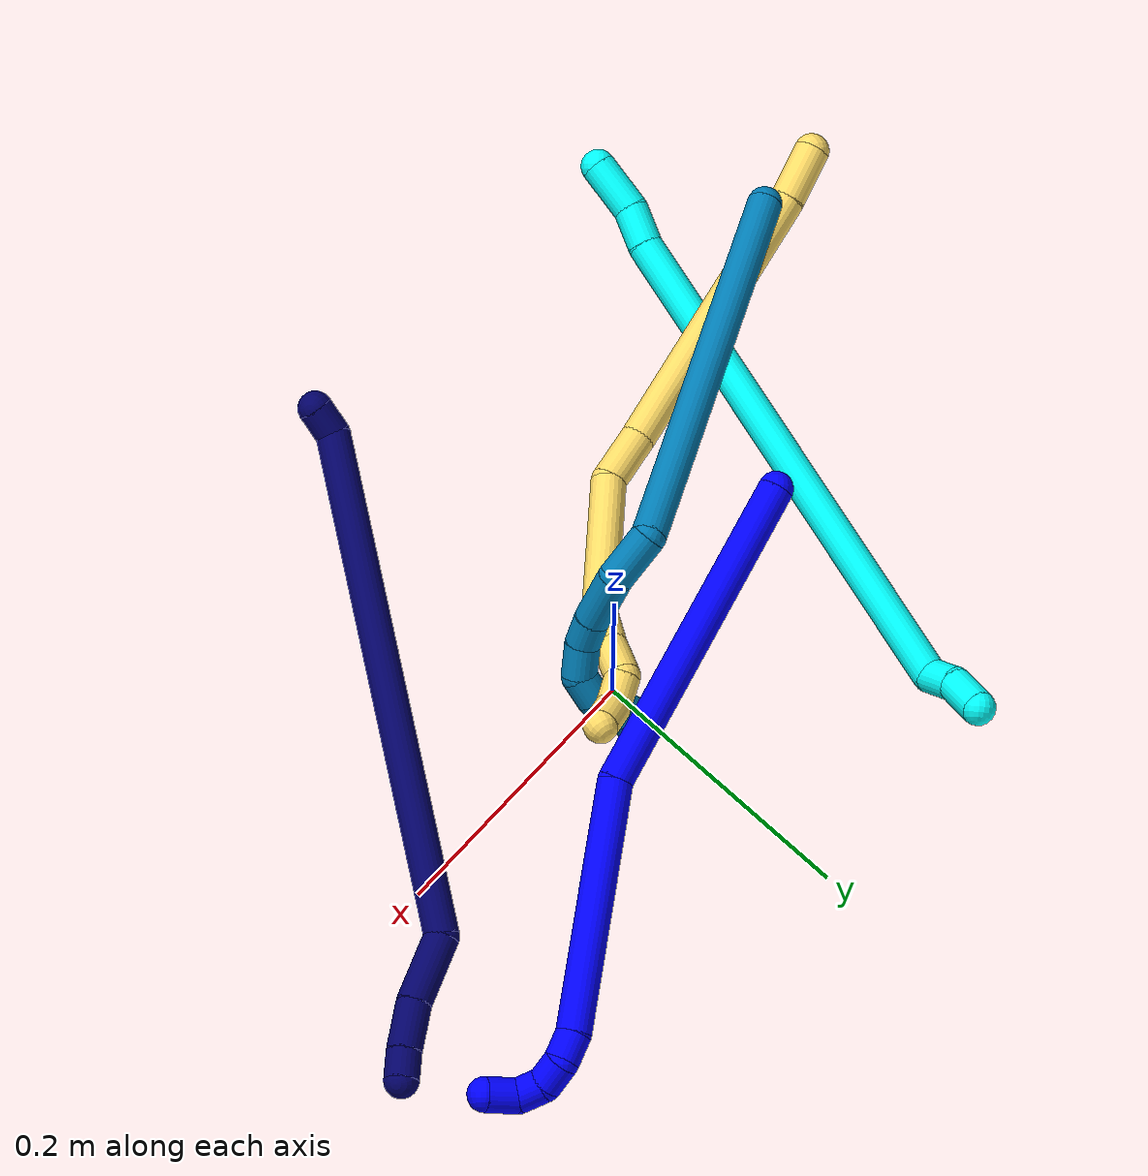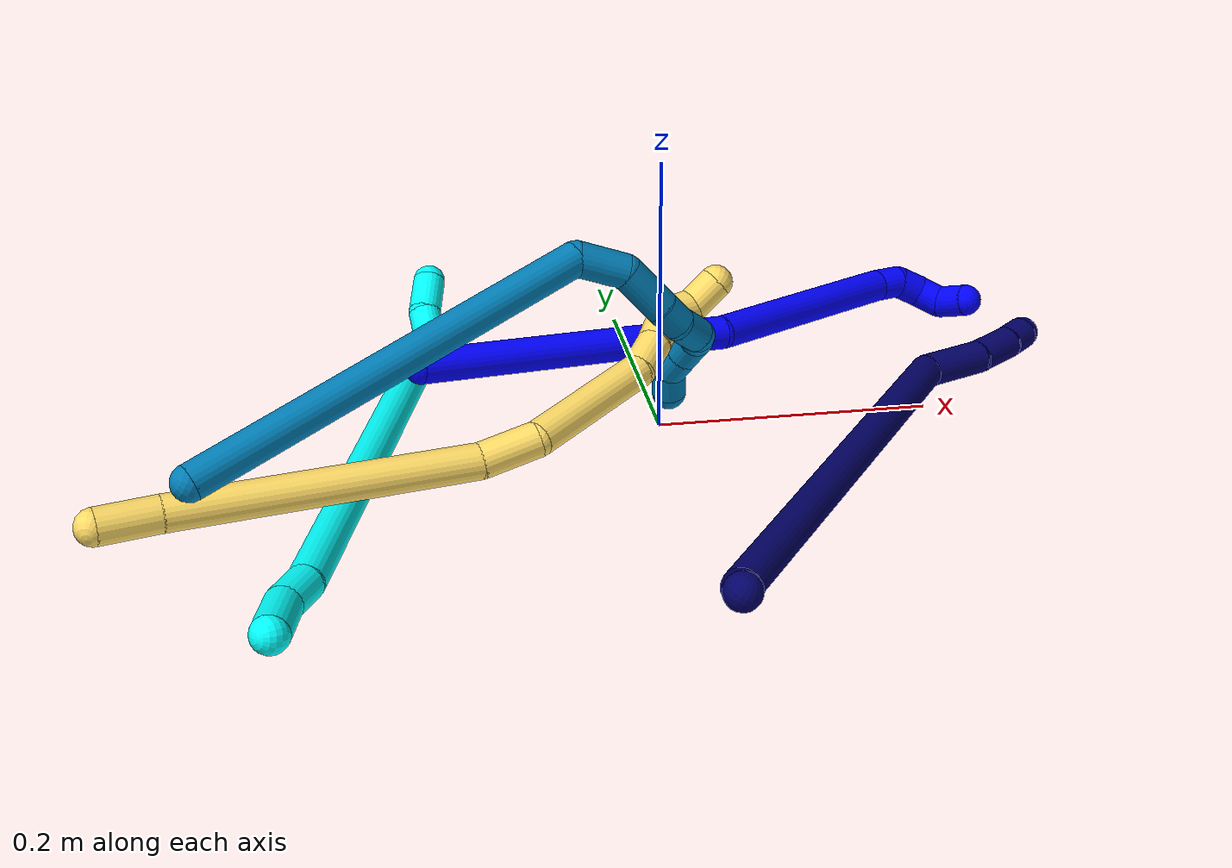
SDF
<sdf version="1.7">
 <world name="default">
  <model name="1">
   <static>0</static>
   <link name="1">
    <collision name="collision-cylinder-e_1_1_4">
     <pose>0.026038 0.046804 0.105068 -0.419074 0.222623 -0.04753</pose>
     <geometry><cylinder><radius>0.0125</radius><length>0.235863</length></cylinder></geometry>
     <surface>
      <friction><ode><mu>1.16</mu><mu2>1.16</mu2><slip1>0</slip1><slip2>0</slip2></ode></friction>
      <contact><ode><kp>1e+06</kp><kd>1</kd><max_vel>0</max_vel><min_depth>0.001</min_depth></ode></contact>
     </surface>
    </collision>
    <visual name="visual-cylinder-e_1_1_4">
     <pose>0.026038 0.046804 0.105068 -0.419074 0.222623 -0.04753</pose>
     <geometry><cylinder><radius>0.0125</radius><length>0.235863</length></cylinder></geometry>
     <material><ambient>0 0 1 1</ambient></material>
    </visual>
    <collision name="collision-cylinder-e_2_4_5">
     <pose>0.058382 0.104125 0.298619 -0.118306 0.070656 -0.004186</pose>
     <geometry><cylinder><radius>0.0125</radius><length>0.178659</length></cylinder></geometry>
     <surface>
      <friction><ode><mu>1.16</mu><mu2>1.16</mu2><slip1>0</slip1><slip2>0</slip2></ode></friction>
      <contact><ode><kp>1e+06</kp><kd>1</kd><max_vel>0</max_vel><min_depth>0.001</min_depth></ode></contact>
     </surface>
    </collision>
    <visual name="visual-cylinder-e_2_4_5">
     <pose>0.058382 0.104125 0.298619 -0.118306 0.070656 -0.004186</pose>
     <geometry><cylinder><radius>0.0125</radius><length>0.178659</length></cylinder></geometry>
     <material><ambient>0 0 1 1</ambient></material>
    </visual>
    <collision name="collision-cylinder-e_3_5_6">
     <pose>0.066924 0.117865 0.39684 -0.319651 0.214549 -0.034715</pose>
     <geometry><cylinder><radius>0.0125</radius><length>0.020994</length></cylinder></geometry>
     <surface>
      <friction><ode><mu>1.16</mu><mu2>1.16</mu2><slip1>0</slip1><slip2>0</slip2></ode></friction>
      <contact><ode><kp>1e+06</kp><kd>1</kd><max_vel>0</max_vel><min_depth>0.001</min_depth></ode></contact>
     </surface>
    </collision>
    <visual name="visual-cylinder-e_3_5_6">
     <pose>0.066924 0.117865 0.39684 -0.319651 0.214549 -0.034715</pose>
     <geometry><cylinder><radius>0.0125</radius><length>0.020994</length></cylinder></geometry>
     <material><ambient>0 0 1 1</ambient></material>
    </visual>
    <collision name="collision-cylinder-e_4_6_7">
     <pose>0.068237 0.128144 0.41388 -0.768238 -0.090511 0.036605</pose>
     <geometry><cylinder><radius>0.0125</radius><length>0.020394</length></cylinder></geometry>
     <surface>
      <friction><ode><mu>1.16</mu><mu2>1.16</mu2><slip1>0</slip1><slip2>0</slip2></ode></friction>
      <contact><ode><kp>1e+06</kp><kd>1</kd><max_vel>0</max_vel><min_depth>0.001</min_depth></ode></contact>
     </surface>
    </collision>
    <visual name="visual-cylinder-e_4_6_7">
     <pose>0.068237 0.128144 0.41388 -0.768238 -0.090511 0.036605</pose>
     <geometry><cylinder><radius>0.0125</radius><length>0.020394</length></cylinder></geometry>
     <material><ambient>0 0 1 1</ambient></material>
    </visual>
    <collision name="collision-cylinder-e_5_7_8">
     <pose>0.068521 0.144536 0.424764 -1.20453 0.11999 -0.082541</pose>
     <geometry><cylinder><radius>0.0125</radius><length>0.020141</length></cylinder></geometry>
     <surface>
      <friction><ode><mu>1.16</mu><mu2>1.16</mu2><slip1>0</slip1><slip2>0</slip2></ode></friction>
      <contact><ode><kp>1e+06</kp><kd>1</kd><max_vel>0</max_vel><min_depth>0.001</min_depth></ode></contact>
     </surface>
    </collision>
    <visual name="visual-cylinder-e_5_7_8">
     <pose>0.068521 0.144536 0.424764 -1.20453 0.11999 -0.082541</pose>
     <geometry><cylinder><radius>0.0125</radius><length>0.020141</length></cylinder></geometry>
     <material><ambient>0 0 1 1</ambient></material>
    </visual>
    <collision name="collision-cylinder-e_6_8_2">
     <pose>0.078451 0.162066 0.428667 -1.53145 0.816286 -0.788</pose>
     <geometry><cylinder><radius>0.0125</radius><length>0.023949</length></cylinder></geometry>
     <surface>
      <friction><ode><mu>1.16</mu><mu2>1.16</mu2><slip1>0</slip1><slip2>0</slip2></ode></friction>
      <contact><ode><kp>1e+06</kp><kd>1</kd><max_vel>0</max_vel><min_depth>0.001</min_depth></ode></contact>
     </surface>
    </collision>
    <visual name="visual-cylinder-e_6_8_2">
     <pose>0.078451 0.162066 0.428667 -1.53145 0.816286 -0.788</pose>
     <geometry><cylinder><radius>0.0125</radius><length>0.023949</length></cylinder></geometry>
     <material><ambient>0 0 1 1</ambient></material>
    </visual>
    <collision name="collision-sphere-2">
     <pose>0.087176 0.170262 0.428989 0 -0 0</pose>
     <geometry><sphere><radius>0.0125</radius></sphere></geometry>
     <surface>
      <friction><ode><mu>1.16</mu><mu2>1.16</mu2><slip1>0</slip1><slip2>0</slip2></ode></friction>
      <contact><ode><kp>1e+06</kp><kd>1</kd><max_vel>0</max_vel><min_depth>0.001</min_depth></ode></contact>
     </surface>
    </collision>
    <visual name="visual-sphere-2">
     <pose>0.087176 0.170262 0.428989 0 -0 0</pose>
     <geometry><sphere><radius>0.0125</radius></sphere></geometry>
     <material><ambient>0 0 1 1</ambient></material>
    </visual>
    <collision name="collision-sphere-4">
     <pose>0.052076 0.093607 0.210136 0 -0 0</pose>
     <geometry><sphere><radius>0.0125</radius></sphere></geometry>
     <surface>
      <friction><ode><mu>1.16</mu><mu2>1.16</mu2><slip1>0</slip1><slip2>0</slip2></ode></friction>
      <contact><ode><kp>1e+06</kp><kd>1</kd><max_vel>0</max_vel><min_depth>0.001</min_depth></ode></contact>
     </surface>
    </collision>
    <visual name="visual-sphere-4">
     <pose>0.052076 0.093607 0.210136 0 -0 0</pose>
     <geometry><sphere><radius>0.0125</radius></sphere></geometry>
     <material><ambient>0 0 1 1</ambient></material>
    </visual>
    <collision name="collision-sphere-1">
     <geometry><sphere><radius>0.0125</radius></sphere></geometry>
     <surface>
      <friction><ode><mu>1.16</mu><mu2>1.16</mu2><slip1>0</slip1><slip2>0</slip2></ode></friction>
      <contact><ode><kp>1e+06</kp><kd>1</kd><max_vel>0</max_vel><min_depth>0.001</min_depth></ode></contact>
     </surface>
    </collision>
    <visual name="visual-sphere-1">
     <geometry><sphere><radius>0.0125</radius></sphere></geometry>
     <material><ambient>0 0 1 1</ambient></material>
    </visual>
    <collision name="collision-sphere-8">
     <pose>0.069726 0.153871 0.428344 0 -0 0</pose>
     <geometry><sphere><radius>0.0125</radius></sphere></geometry>
     <surface>
      <friction><ode><mu>1.16</mu><mu2>1.16</mu2><slip1>0</slip1><slip2>0</slip2></ode></friction>
      <contact><ode><kp>1e+06</kp><kd>1</kd><max_vel>0</max_vel><min_depth>0.001</min_depth></ode></contact>
     </surface>
    </collision>
    <visual name="visual-sphere-8">
     <pose>0.069726 0.153871 0.428344 0 -0 0</pose>
     <geometry><sphere><radius>0.0125</radius></sphere></geometry>
     <material><ambient>0 0 1 1</ambient></material>
    </visual>
    <collision name="collision-sphere-5">
     <pose>0.064689 0.114642 0.387103 0 -0 0</pose>
     <geometry><sphere><radius>0.0125</radius></sphere></geometry>
     <surface>
      <friction><ode><mu>1.16</mu><mu2>1.16</mu2><slip1>0</slip1><slip2>0</slip2></ode></friction>
      <contact><ode><kp>1e+06</kp><kd>1</kd><max_vel>0</max_vel><min_depth>0.001</min_depth></ode></contact>
     </surface>
    </collision>
    <visual name="visual-sphere-5">
     <pose>0.064689 0.114642 0.387103 0 -0 0</pose>
     <geometry><sphere><radius>0.0125</radius></sphere></geometry>
     <material><ambient>0 0 1 1</ambient></material>
    </visual>
    <collision name="collision-sphere-6">
     <pose>0.069159 0.121088 0.406577 0 -0 0</pose>
     <geometry><sphere><radius>0.0125</radius></sphere></geometry>
     <surface>
      <friction><ode><mu>1.16</mu><mu2>1.16</mu2><slip1>0</slip1><slip2>0</slip2></ode></friction>
      <contact><ode><kp>1e+06</kp><kd>1</kd><max_vel>0</max_vel><min_depth>0.001</min_depth></ode></contact>
     </surface>
    </collision>
    <visual name="visual-sphere-6">
     <pose>0.069159 0.121088 0.406577 0 -0 0</pose>
     <geometry><sphere><radius>0.0125</radius></sphere></geometry>
     <material><ambient>0 0 1 1</ambient></material>
    </visual>
    <collision name="collision-sphere-7">
     <pose>0.067315 0.135201 0.421183 0 -0 0</pose>
     <geometry><sphere><radius>0.0125</radius></sphere></geometry>
     <surface>
      <friction><ode><mu>1.16</mu><mu2>1.16</mu2><slip1>0</slip1><slip2>0</slip2></ode></friction>
      <contact><ode><kp>1e+06</kp><kd>1</kd><max_vel>0</max_vel><min_depth>0.001</min_depth></ode></contact>
     </surface>
    </collision>
    <visual name="visual-sphere-7">
     <pose>0.067315 0.135201 0.421183 0 -0 0</pose>
     <geometry><sphere><radius>0.0125</radius></sphere></geometry>
     <material><ambient>0 0 1 1</ambient></material>
    </visual>
    <inertial>
     <pose>0.045255 0.083045 0.227452 0 -0 0</pose>
     <mass>0.5</mass>
     <inertia>
      <ixx>0.001513</ixx>
      <ixy>0</ixy>
      <ixz>0</ixz>
      <iyy>0.001453</iyy>
      <iyz>0</iyz>
      <izz>-0.000745</izz>
     </inertia>
    </inertial>
   </link>
   <pose>-0.170767 -0.003198 0.060298 -1.69502 -1.05223 -0.744985</pose>
  </model>
  <model name="3">
   <static>0</static>
   <link name="3">
    <collision name="collision-cylinder-e_1_1_4">
     <pose>0.001637 0.012951 -0.014633 -2.4171 0.083598 -0.21983</pose>
     <geometry><cylinder><radius>0.0125</radius><length>0.03922</length></cylinder></geometry>
     <surface>
      <friction><ode><mu>1.16</mu><mu2>1.16</mu2><slip1>0</slip1><slip2>0</slip2></ode></friction>
      <contact><ode><kp>1e+06</kp><kd>1</kd><max_vel>0</max_vel><min_depth>0.001</min_depth></ode></contact>
     </surface>
    </collision>
    <visual name="visual-cylinder-e_1_1_4">
     <pose>0.001637 0.012951 -0.014633 -2.4171 0.083598 -0.21983</pose>
     <geometry><cylinder><radius>0.0125</radius><length>0.03922</length></cylinder></geometry>
     <material><ambient>0.003922 1 0.996078 1</ambient></material>
    </visual>
    <collision name="collision-cylinder-e_2_4_5">
     <pose>0.005544 0.032281 -0.042396 -2.68933 0.154228 -0.648019</pose>
     <geometry><cylinder><radius>0.0125</radius><length>0.029544</length></cylinder></geometry>
     <surface>
      <friction><ode><mu>1.16</mu><mu2>1.16</mu2><slip1>0</slip1><slip2>0</slip2></ode></friction>
      <contact><ode><kp>1e+06</kp><kd>1</kd><max_vel>0</max_vel><min_depth>0.001</min_depth></ode></contact>
     </surface>
    </collision>
    <visual name="visual-cylinder-e_2_4_5">
     <pose>0.005544 0.032281 -0.042396 -2.68933 0.154228 -0.648019</pose>
     <geometry><cylinder><radius>0.0125</radius><length>0.029544</length></cylinder></geometry>
     <material><ambient>0.003922 1 0.996078 1</ambient></material>
    </visual>
    <collision name="collision-cylinder-e_3_5_6">
     <pose>0.043746 0.150104 -0.201927 -2.49095 0.192865 -0.558571</pose>
     <geometry><cylinder><radius>0.0125</radius><length>0.374938</length></cylinder></geometry>
     <surface>
      <friction><ode><mu>1.16</mu><mu2>1.16</mu2><slip1>0</slip1><slip2>0</slip2></ode></friction>
      <contact><ode><kp>1e+06</kp><kd>1</kd><max_vel>0</max_vel><min_depth>0.001</min_depth></ode></contact>
     </surface>
    </collision>
    <visual name="visual-cylinder-e_3_5_6">
     <pose>0.043746 0.150104 -0.201927 -2.49095 0.192865 -0.558571</pose>
     <geometry><cylinder><radius>0.0125</radius><length>0.374938</length></cylinder></geometry>
     <material><ambient>0.003922 1 0.996078 1</ambient></material>
    </visual>
    <collision name="collision-cylinder-e_4_6_7">
     <pose>0.088566 0.269827 -0.351369 -1.92255 0.789247 -1.07566</pose>
     <geometry><cylinder><radius>0.0125</radius><length>0.025042</length></cylinder></geometry>
     <surface>
      <friction><ode><mu>1.16</mu><mu2>1.16</mu2><slip1>0</slip1><slip2>0</slip2></ode></friction>
      <contact><ode><kp>1e+06</kp><kd>1</kd><max_vel>0</max_vel><min_depth>0.001</min_depth></ode></contact>
     </surface>
    </collision>
    <visual name="visual-cylinder-e_4_6_7">
     <pose>0.088566 0.269827 -0.351369 -1.92255 0.789247 -1.07566</pose>
     <geometry><cylinder><radius>0.0125</radius><length>0.025042</length></cylinder></geometry>
     <material><ambient>0.003922 1 0.996078 1</ambient></material>
    </visual>
    <collision name="collision-cylinder-e_5_7_2">
     <pose>0.107974 0.286167 -0.362689 -2.36978 0.738503 -1.52221</pose>
     <geometry><cylinder><radius>0.0125</radius><length>0.031256</length></cylinder></geometry>
     <surface>
      <friction><ode><mu>1.16</mu><mu2>1.16</mu2><slip1>0</slip1><slip2>0</slip2></ode></friction>
      <contact><ode><kp>1e+06</kp><kd>1</kd><max_vel>0</max_vel><min_depth>0.001</min_depth></ode></contact>
     </surface>
    </collision>
    <visual name="visual-cylinder-e_5_7_2">
     <pose>0.107974 0.286167 -0.362689 -2.36978 0.738503 -1.52221</pose>
     <geometry><cylinder><radius>0.0125</radius><length>0.031256</length></cylinder></geometry>
     <material><ambient>0.003922 1 0.996078 1</ambient></material>
    </visual>
    <collision name="collision-sphere-2">
     <pose>0.118495 0.294227 -0.370971 0 -0 0</pose>
     <geometry><sphere><radius>0.0125</radius></sphere></geometry>
     <surface>
      <friction><ode><mu>1.16</mu><mu2>1.16</mu2><slip1>0</slip1><slip2>0</slip2></ode></friction>
      <contact><ode><kp>1e+06</kp><kd>1</kd><max_vel>0</max_vel><min_depth>0.001</min_depth></ode></contact>
     </surface>
    </collision>
    <visual name="visual-sphere-2">
     <pose>0.118495 0.294227 -0.370971 0 -0 0</pose>
     <geometry><sphere><radius>0.0125</radius></sphere></geometry>
     <material><ambient>0.003922 1 0.996078 1</ambient></material>
    </visual>
    <collision name="collision-sphere-7">
     <pose>0.097454 0.278107 -0.354407 0 -0 0</pose>
     <geometry><sphere><radius>0.0125</radius></sphere></geometry>
     <surface>
      <friction><ode><mu>1.16</mu><mu2>1.16</mu2><slip1>0</slip1><slip2>0</slip2></ode></friction>
      <contact><ode><kp>1e+06</kp><kd>1</kd><max_vel>0</max_vel><min_depth>0.001</min_depth></ode></contact>
     </surface>
    </collision>
    <visual name="visual-sphere-7">
     <pose>0.097454 0.278107 -0.354407 0 -0 0</pose>
     <geometry><sphere><radius>0.0125</radius></sphere></geometry>
     <material><ambient>0.003922 1 0.996078 1</ambient></material>
    </visual>
    <collision name="collision-sphere-6">
     <pose>0.079678 0.261548 -0.34833 0 -0 0</pose>
     <geometry><sphere><radius>0.0125</radius></sphere></geometry>
     <surface>
      <friction><ode><mu>1.16</mu><mu2>1.16</mu2><slip1>0</slip1><slip2>0</slip2></ode></friction>
      <contact><ode><kp>1e+06</kp><kd>1</kd><max_vel>0</max_vel><min_depth>0.001</min_depth></ode></contact>
     </surface>
    </collision>
    <visual name="visual-sphere-6">
     <pose>0.079678 0.261548 -0.34833 0 -0 0</pose>
     <geometry><sphere><radius>0.0125</radius></sphere></geometry>
     <material><ambient>0.003922 1 0.996078 1</ambient></material>
    </visual>
    <collision name="collision-sphere-5">
     <pose>0.007813 0.03866 -0.055525 0 -0 0</pose>
     <geometry><sphere><radius>0.0125</radius></sphere></geometry>
     <surface>
      <friction><ode><mu>1.16</mu><mu2>1.16</mu2><slip1>0</slip1><slip2>0</slip2></ode></friction>
      <contact><ode><kp>1e+06</kp><kd>1</kd><max_vel>0</max_vel><min_depth>0.001</min_depth></ode></contact>
     </surface>
    </collision>
    <visual name="visual-sphere-5">
     <pose>0.007813 0.03866 -0.055525 0 -0 0</pose>
     <geometry><sphere><radius>0.0125</radius></sphere></geometry>
     <material><ambient>0.003922 1 0.996078 1</ambient></material>
    </visual>
    <collision name="collision-sphere-1">
     <geometry><sphere><radius>0.0125</radius></sphere></geometry>
     <surface>
      <friction><ode><mu>1.16</mu><mu2>1.16</mu2><slip1>0</slip1><slip2>0</slip2></ode></friction>
      <contact><ode><kp>1e+06</kp><kd>1</kd><max_vel>0</max_vel><min_depth>0.001</min_depth></ode></contact>
     </surface>
    </collision>
    <visual name="visual-sphere-1">
     <geometry><sphere><radius>0.0125</radius></sphere></geometry>
     <material><ambient>0.003922 1 0.996078 1</ambient></material>
    </visual>
    <collision name="collision-sphere-4">
     <pose>0.003275 0.025903 -0.029267 0 -0 0</pose>
     <geometry><sphere><radius>0.0125</radius></sphere></geometry>
     <surface>
      <friction><ode><mu>1.16</mu><mu2>1.16</mu2><slip1>0</slip1><slip2>0</slip2></ode></friction>
      <contact><ode><kp>1e+06</kp><kd>1</kd><max_vel>0</max_vel><min_depth>0.001</min_depth></ode></contact>
     </surface>
    </collision>
    <visual name="visual-sphere-4">
     <pose>0.003275 0.025903 -0.029267 0 -0 0</pose>
     <geometry><sphere><radius>0.0125</radius></sphere></geometry>
     <material><ambient>0.003922 1 0.996078 1</ambient></material>
    </visual>
    <inertial>
     <pose>0.044445 0.146886 -0.195344 0 -0 0</pose>
     <mass>0.5</mass>
     <inertia>
      <ixx>0.001387</ixx>
      <ixy>0</ixy>
      <ixz>0</ixz>
      <iyy>-0.004984</iyy>
      <iyz>0</iyz>
      <izz>-0.003508</izz>
     </inertia>
    </inertial>
   </link>
   <pose>-0.277291 -0.267767 0.017058 -0.143277 -1.35097 0.797984</pose>
  </model>
  <model name="5">
   <static>0</static>
   <link name="5">
    <collision name="collision-cylinder-e_1_1_4">
     <pose>0.016328 0.007244 -0.01096 -2.5576 0.893257 -2.02057</pose>
     <geometry><cylinder><radius>0.0125</radius><length>0.041915</length></cylinder></geometry>
     <surface>
      <friction><ode><mu>1.16</mu><mu2>1.16</mu2><slip1>0</slip1><slip2>0</slip2></ode></friction>
      <contact><ode><kp>1e+06</kp><kd>1</kd><max_vel>0</max_vel><min_depth>0.001</min_depth></ode></contact>
     </surface>
    </collision>
    <visual name="visual-cylinder-e_1_1_4">
     <pose>0.016328 0.007244 -0.01096 -2.5576 0.893257 -2.02057</pose>
     <geometry><cylinder><radius>0.0125</radius><length>0.041915</length></cylinder></geometry>
     <material><ambient>1 0.858824 0.4 1</ambient></material>
    </visual>
    <collision name="collision-cylinder-e_2_4_5">
     <pose>0.115733 0.055495 -0.068613 -2.42092 0.928559 -1.85154</pose>
     <geometry><cylinder><radius>0.0125</radius><length>0.207495</length></cylinder></geometry>
     <surface>
      <friction><ode><mu>1.16</mu><mu2>1.16</mu2><slip1>0</slip1><slip2>0</slip2></ode></friction>
      <contact><ode><kp>1e+06</kp><kd>1</kd><max_vel>0</max_vel><min_depth>0.001</min_depth></ode></contact>
     </surface>
    </collision>
    <visual name="visual-cylinder-e_2_4_5">
     <pose>0.115733 0.055495 -0.068613 -2.42092 0.928559 -1.85154</pose>
     <geometry><cylinder><radius>0.0125</radius><length>0.207495</length></cylinder></geometry>
     <material><ambient>1 0.858824 0.4 1</ambient></material>
    </visual>
    <collision name="collision-cylinder-e_3_5_6">
     <pose>0.212347 0.108195 -0.12545 -2.28549 0.718571 -1.37743</pose>
     <geometry><cylinder><radius>0.0125</radius><length>0.041127</length></cylinder></geometry>
     <surface>
      <friction><ode><mu>1.16</mu><mu2>1.16</mu2><slip1>0</slip1><slip2>0</slip2></ode></friction>
      <contact><ode><kp>1e+06</kp><kd>1</kd><max_vel>0</max_vel><min_depth>0.001</min_depth></ode></contact>
     </surface>
    </collision>
    <visual name="visual-cylinder-e_3_5_6">
     <pose>0.212347 0.108195 -0.12545 -2.28549 0.718571 -1.37743</pose>
     <geometry><cylinder><radius>0.0125</radius><length>0.041127</length></cylinder></geometry>
     <material><ambient>1 0.858824 0.4 1</ambient></material>
    </visual>
    <collision name="collision-cylinder-e_4_6_7">
     <pose>0.251125 0.134683 -0.177723 -2.80382 0.51452 -1.99151</pose>
     <geometry><cylinder><radius>0.0125</radius><length>0.102584</length></cylinder></geometry>
     <surface>
      <friction><ode><mu>1.16</mu><mu2>1.16</mu2><slip1>0</slip1><slip2>0</slip2></ode></friction>
      <contact><ode><kp>1e+06</kp><kd>1</kd><max_vel>0</max_vel><min_depth>0.001</min_depth></ode></contact>
     </surface>
    </collision>
    <visual name="visual-cylinder-e_4_6_7">
     <pose>0.251125 0.134683 -0.177723 -2.80382 0.51452 -1.99151</pose>
     <geometry><cylinder><radius>0.0125</radius><length>0.102584</length></cylinder></geometry>
     <material><ambient>1 0.858824 0.4 1</ambient></material>
    </visual>
    <collision name="collision-cylinder-e_5_7_8">
     <pose>0.278925 0.153169 -0.233872 -2.88425 0.174661 -1.18981</pose>
     <geometry><cylinder><radius>0.0125</radius><length>0.029445</length></cylinder></geometry>
     <surface>
      <friction><ode><mu>1.16</mu><mu2>1.16</mu2><slip1>0</slip1><slip2>0</slip2></ode></friction>
      <contact><ode><kp>1e+06</kp><kd>1</kd><max_vel>0</max_vel><min_depth>0.001</min_depth></ode></contact>
     </surface>
    </collision>
    <visual name="visual-cylinder-e_5_7_8">
     <pose>0.278925 0.153169 -0.233872 -2.88425 0.174661 -1.18981</pose>
     <geometry><cylinder><radius>0.0125</radius><length>0.029445</length></cylinder></geometry>
     <material><ambient>1 0.858824 0.4 1</ambient></material>
    </visual>
    <collision name="collision-cylinder-e_6_8_9">
     <pose>0.282487 0.160538 -0.262008 -2.88663 0.068634 -0.523386</pose>
     <geometry><cylinder><radius>0.0125</radius><length>0.029242</length></cylinder></geometry>
     <surface>
      <friction><ode><mu>1.16</mu><mu2>1.16</mu2><slip1>0</slip1><slip2>0</slip2></ode></friction>
      <contact><ode><kp>1e+06</kp><kd>1</kd><max_vel>0</max_vel><min_depth>0.001</min_depth></ode></contact>
     </surface>
    </collision>
    <visual name="visual-cylinder-e_6_8_9">
     <pose>0.282487 0.160538 -0.262008 -2.88663 0.068634 -0.523386</pose>
     <geometry><cylinder><radius>0.0125</radius><length>0.029242</length></cylinder></geometry>
     <material><ambient>1 0.858824 0.4 1</ambient></material>
    </visual>
    <collision name="collision-cylinder-e_7_9_10">
     <pose>0.291305 0.167914 -0.283774 -2.69144 0.743586 -2.07973</pose>
     <geometry><cylinder><radius>0.0125</radius><length>0.023091</length></cylinder></geometry>
     <surface>
      <friction><ode><mu>1.16</mu><mu2>1.16</mu2><slip1>0</slip1><slip2>0</slip2></ode></friction>
      <contact><ode><kp>1e+06</kp><kd>1</kd><max_vel>0</max_vel><min_depth>0.001</min_depth></ode></contact>
     </surface>
    </collision>
    <visual name="visual-cylinder-e_7_9_10">
     <pose>0.291305 0.167914 -0.283774 -2.69144 0.743586 -2.07973</pose>
     <geometry><cylinder><radius>0.0125</radius><length>0.023091</length></cylinder></geometry>
     <material><ambient>1 0.858824 0.4 1</ambient></material>
    </visual>
    <collision name="collision-cylinder-e_8_10_2">
     <pose>0.302575 0.1815 -0.298342 -2.18116 0.27882 -0.52628</pose>
     <geometry><cylinder><radius>0.0125</radius><length>0.025102</length></cylinder></geometry>
     <surface>
      <friction><ode><mu>1.16</mu><mu2>1.16</mu2><slip1>0</slip1><slip2>0</slip2></ode></friction>
      <contact><ode><kp>1e+06</kp><kd>1</kd><max_vel>0</max_vel><min_depth>0.001</min_depth></ode></contact>
     </surface>
    </collision>
    <visual name="visual-cylinder-e_8_10_2">
     <pose>0.302575 0.1815 -0.298342 -2.18116 0.27882 -0.52628</pose>
     <geometry><cylinder><radius>0.0125</radius><length>0.025102</length></cylinder></geometry>
     <material><ambient>1 0.858824 0.4 1</ambient></material>
    </visual>
    <collision name="collision-sphere-2">
     <pose>0.306029 0.191387 -0.305258 0 -0 0</pose>
     <geometry><sphere><radius>0.0125</radius></sphere></geometry>
     <surface>
      <friction><ode><mu>1.16</mu><mu2>1.16</mu2><slip1>0</slip1><slip2>0</slip2></ode></friction>
      <contact><ode><kp>1e+06</kp><kd>1</kd><max_vel>0</max_vel><min_depth>0.001</min_depth></ode></contact>
     </surface>
    </collision>
    <visual name="visual-sphere-2">
     <pose>0.306029 0.191387 -0.305258 0 -0 0</pose>
     <geometry><sphere><radius>0.0125</radius></sphere></geometry>
     <material><ambient>1 0.858824 0.4 1</ambient></material>
    </visual>
    <collision name="collision-sphere-10">
     <pose>0.29912 0.171612 -0.291426 0 -0 0</pose>
     <geometry><sphere><radius>0.0125</radius></sphere></geometry>
     <surface>
      <friction><ode><mu>1.16</mu><mu2>1.16</mu2><slip1>0</slip1><slip2>0</slip2></ode></friction>
      <contact><ode><kp>1e+06</kp><kd>1</kd><max_vel>0</max_vel><min_depth>0.001</min_depth></ode></contact>
     </surface>
    </collision>
    <visual name="visual-sphere-10">
     <pose>0.29912 0.171612 -0.291426 0 -0 0</pose>
     <geometry><sphere><radius>0.0125</radius></sphere></geometry>
     <material><ambient>1 0.858824 0.4 1</ambient></material>
    </visual>
    <collision name="collision-sphere-9">
     <pose>0.283489 0.164217 -0.276123 0 -0 0</pose>
     <geometry><sphere><radius>0.0125</radius></sphere></geometry>
     <surface>
      <friction><ode><mu>1.16</mu><mu2>1.16</mu2><slip1>0</slip1><slip2>0</slip2></ode></friction>
      <contact><ode><kp>1e+06</kp><kd>1</kd><max_vel>0</max_vel><min_depth>0.001</min_depth></ode></contact>
     </surface>
    </collision>
    <visual name="visual-sphere-9">
     <pose>0.283489 0.164217 -0.276123 0 -0 0</pose>
     <geometry><sphere><radius>0.0125</radius></sphere></geometry>
     <material><ambient>1 0.858824 0.4 1</ambient></material>
    </visual>
    <collision name="collision-sphere-4">
     <pose>0.032656 0.014487 -0.021921 0 -0 0</pose>
     <geometry><sphere><radius>0.0125</radius></sphere></geometry>
     <surface>
      <friction><ode><mu>1.16</mu><mu2>1.16</mu2><slip1>0</slip1><slip2>0</slip2></ode></friction>
      <contact><ode><kp>1e+06</kp><kd>1</kd><max_vel>0</max_vel><min_depth>0.001</min_depth></ode></contact>
     </surface>
    </collision>
    <visual name="visual-sphere-4">
     <pose>0.032656 0.014487 -0.021921 0 -0 0</pose>
     <geometry><sphere><radius>0.0125</radius></sphere></geometry>
     <material><ambient>1 0.858824 0.4 1</ambient></material>
    </visual>
    <collision name="collision-sphere-1">
     <geometry><sphere><radius>0.0125</radius></sphere></geometry>
     <surface>
      <friction><ode><mu>1.16</mu><mu2>1.16</mu2><slip1>0</slip1><slip2>0</slip2></ode></friction>
      <contact><ode><kp>1e+06</kp><kd>1</kd><max_vel>0</max_vel><min_depth>0.001</min_depth></ode></contact>
     </surface>
    </collision>
    <visual name="visual-sphere-1">
     <geometry><sphere><radius>0.0125</radius></sphere></geometry>
     <material><ambient>1 0.858824 0.4 1</ambient></material>
    </visual>
    <collision name="collision-sphere-8">
     <pose>0.281484 0.156859 -0.247893 0 -0 0</pose>
     <geometry><sphere><radius>0.0125</radius></sphere></geometry>
     <surface>
      <friction><ode><mu>1.16</mu><mu2>1.16</mu2><slip1>0</slip1><slip2>0</slip2></ode></friction>
      <contact><ode><kp>1e+06</kp><kd>1</kd><max_vel>0</max_vel><min_depth>0.001</min_depth></ode></contact>
     </surface>
    </collision>
    <visual name="visual-sphere-8">
     <pose>0.281484 0.156859 -0.247893 0 -0 0</pose>
     <geometry><sphere><radius>0.0125</radius></sphere></geometry>
     <material><ambient>1 0.858824 0.4 1</ambient></material>
    </visual>
    <collision name="collision-sphere-5">
     <pose>0.19881 0.096503 -0.115305 0 -0 0</pose>
     <geometry><sphere><radius>0.0125</radius></sphere></geometry>
     <surface>
      <friction><ode><mu>1.16</mu><mu2>1.16</mu2><slip1>0</slip1><slip2>0</slip2></ode></friction>
      <contact><ode><kp>1e+06</kp><kd>1</kd><max_vel>0</max_vel><min_depth>0.001</min_depth></ode></contact>
     </surface>
    </collision>
    <visual name="visual-sphere-5">
     <pose>0.19881 0.096503 -0.115305 0 -0 0</pose>
     <geometry><sphere><radius>0.0125</radius></sphere></geometry>
     <material><ambient>1 0.858824 0.4 1</ambient></material>
    </visual>
    <collision name="collision-sphere-6">
     <pose>0.225884 0.119886 -0.135595 0 -0 0</pose>
     <geometry><sphere><radius>0.0125</radius></sphere></geometry>
     <surface>
      <friction><ode><mu>1.16</mu><mu2>1.16</mu2><slip1>0</slip1><slip2>0</slip2></ode></friction>
      <contact><ode><kp>1e+06</kp><kd>1</kd><max_vel>0</max_vel><min_depth>0.001</min_depth></ode></contact>
     </surface>
    </collision>
    <visual name="visual-sphere-6">
     <pose>0.225884 0.119886 -0.135595 0 -0 0</pose>
     <geometry><sphere><radius>0.0125</radius></sphere></geometry>
     <material><ambient>1 0.858824 0.4 1</ambient></material>
    </visual>
    <collision name="collision-sphere-7">
     <pose>0.276367 0.149479 -0.219851 0 -0 0</pose>
     <geometry><sphere><radius>0.0125</radius></sphere></geometry>
     <surface>
      <friction><ode><mu>1.16</mu><mu2>1.16</mu2><slip1>0</slip1><slip2>0</slip2></ode></friction>
      <contact><ode><kp>1e+06</kp><kd>1</kd><max_vel>0</max_vel><min_depth>0.001</min_depth></ode></contact>
     </surface>
    </collision>
    <visual name="visual-sphere-7">
     <pose>0.276367 0.149479 -0.219851 0 -0 0</pose>
     <geometry><sphere><radius>0.0125</radius></sphere></geometry>
     <material><ambient>1 0.858824 0.4 1</ambient></material>
    </visual>
    <inertial>
     <pose>0.179976 0.095445 -0.133353 0 -0 0</pose>
     <mass>0.5</mass>
     <inertia>
      <ixx>-0.000655</ixx>
      <ixy>0</ixy>
      <ixz>0</ixz>
      <iyy>8.5e-05</iyy>
      <iyz>0</iyz>
      <izz>-0.001022</izz>
     </inertia>
    </inertial>
   </link>
   <pose>-0.383138 -0.158597 0.03684 1.8387 0.564184 -0.13331</pose>
  </model>
  <model name="7">
   <static>0</static>
   <link name="7">
    <collision name="collision-cylinder-e_1_1_4">
     <pose>0.006227 0.009025 -0.002413 -1.83209 0.587969 -0.75126</pose>
     <geometry><cylinder><radius>0.0125</radius><length>0.022455</length></cylinder></geometry>
     <surface>
      <friction><ode><mu>1.16</mu><mu2>1.16</mu2><slip1>0</slip1><slip2>0</slip2></ode></friction>
      <contact><ode><kp>1e+06</kp><kd>1</kd><max_vel>0</max_vel><min_depth>0.001</min_depth></ode></contact>
     </surface>
    </collision>
    <visual name="visual-cylinder-e_1_1_4">
     <pose>0.006227 0.009025 -0.002413 -1.83209 0.587969 -0.75126</pose>
     <geometry><cylinder><radius>0.0125</radius><length>0.022455</length></cylinder></geometry>
     <material><ambient>0.003922 0 0.403922 1</ambient></material>
    </visual>
    <collision name="collision-cylinder-e_2_4_5">
     <pose>0.139329 0.138401 0.056483 -1.09964 0.754127 -0.476191</pose>
     <geometry><cylinder><radius>0.0125</radius><length>0.370622</length></cylinder></geometry>
     <surface>
      <friction><ode><mu>1.16</mu><mu2>1.16</mu2><slip1>0</slip1><slip2>0</slip2></ode></friction>
      <contact><ode><kp>1e+06</kp><kd>1</kd><max_vel>0</max_vel><min_depth>0.001</min_depth></ode></contact>
     </surface>
    </collision>
    <visual name="visual-cylinder-e_2_4_5">
     <pose>0.139329 0.138401 0.056483 -1.09964 0.754127 -0.476191</pose>
     <geometry><cylinder><radius>0.0125</radius><length>0.370622</length></cylinder></geometry>
     <material><ambient>0.003922 0 0.403922 1</ambient></material>
    </visual>
    <collision name="collision-cylinder-e_3_5_6">
     <pose>0.287824 0.261714 0.130491 -0.229185 1.02812 -0.129808</pose>
     <geometry><cylinder><radius>0.0125</radius><length>0.050499</length></cylinder></geometry>
     <surface>
      <friction><ode><mu>1.16</mu><mu2>1.16</mu2><slip1>0</slip1><slip2>0</slip2></ode></friction>
      <contact><ode><kp>1e+06</kp><kd>1</kd><max_vel>0</max_vel><min_depth>0.001</min_depth></ode></contact>
     </surface>
    </collision>
    <visual name="visual-cylinder-e_3_5_6">
     <pose>0.287824 0.261714 0.130491 -0.229185 1.02812 -0.129808</pose>
     <geometry><cylinder><radius>0.0125</radius><length>0.050499</length></cylinder></geometry>
     <material><ambient>0.003922 0 0.403922 1</ambient></material>
    </visual>
    <collision name="collision-cylinder-e_4_6_7">
     <pose>0.323575 0.270115 0.152291 -0.5386 0.927033 -0.274184</pose>
     <geometry><cylinder><radius>0.0125</radius><length>0.035329</length></cylinder></geometry>
     <surface>
      <friction><ode><mu>1.16</mu><mu2>1.16</mu2><slip1>0</slip1><slip2>0</slip2></ode></friction>
      <contact><ode><kp>1e+06</kp><kd>1</kd><max_vel>0</max_vel><min_depth>0.001</min_depth></ode></contact>
     </surface>
    </collision>
    <visual name="visual-cylinder-e_4_6_7">
     <pose>0.323575 0.270115 0.152291 -0.5386 0.927033 -0.274184</pose>
     <geometry><cylinder><radius>0.0125</radius><length>0.035329</length></cylinder></geometry>
     <material><ambient>0.003922 0 0.403922 1</ambient></material>
    </visual>
    <collision name="collision-cylinder-e_5_7_2">
     <pose>0.345779 0.279857 0.166638 -0.686959 0.871976 -0.330222</pose>
     <geometry><cylinder><radius>0.0125</radius><length>0.021096</length></cylinder></geometry>
     <surface>
      <friction><ode><mu>1.16</mu><mu2>1.16</mu2><slip1>0</slip1><slip2>0</slip2></ode></friction>
      <contact><ode><kp>1e+06</kp><kd>1</kd><max_vel>0</max_vel><min_depth>0.001</min_depth></ode></contact>
     </surface>
    </collision>
    <visual name="visual-cylinder-e_5_7_2">
     <pose>0.345779 0.279857 0.166638 -0.686959 0.871976 -0.330222</pose>
     <geometry><cylinder><radius>0.0125</radius><length>0.021096</length></cylinder></geometry>
     <material><ambient>0.003922 0 0.403922 1</ambient></material>
    </visual>
    <collision name="collision-sphere-2">
     <pose>0.353854 0.28416 0.171885 0 -0 0</pose>
     <geometry><sphere><radius>0.0125</radius></sphere></geometry>
     <surface>
      <friction><ode><mu>1.16</mu><mu2>1.16</mu2><slip1>0</slip1><slip2>0</slip2></ode></friction>
      <contact><ode><kp>1e+06</kp><kd>1</kd><max_vel>0</max_vel><min_depth>0.001</min_depth></ode></contact>
     </surface>
    </collision>
    <visual name="visual-sphere-2">
     <pose>0.353854 0.28416 0.171885 0 -0 0</pose>
     <geometry><sphere><radius>0.0125</radius></sphere></geometry>
     <material><ambient>0.003922 0 0.403922 1</ambient></material>
    </visual>
    <collision name="collision-sphere-7">
     <pose>0.337703 0.275553 0.161392 0 -0 0</pose>
     <geometry><sphere><radius>0.0125</radius></sphere></geometry>
     <surface>
      <friction><ode><mu>1.16</mu><mu2>1.16</mu2><slip1>0</slip1><slip2>0</slip2></ode></friction>
      <contact><ode><kp>1e+06</kp><kd>1</kd><max_vel>0</max_vel><min_depth>0.001</min_depth></ode></contact>
     </surface>
    </collision>
    <visual name="visual-sphere-7">
     <pose>0.337703 0.275553 0.161392 0 -0 0</pose>
     <geometry><sphere><radius>0.0125</radius></sphere></geometry>
     <material><ambient>0.003922 0 0.403922 1</ambient></material>
    </visual>
    <collision name="collision-sphere-6">
     <pose>0.309446 0.264677 0.143189 0 -0 0</pose>
     <geometry><sphere><radius>0.0125</radius></sphere></geometry>
     <surface>
      <friction><ode><mu>1.16</mu><mu2>1.16</mu2><slip1>0</slip1><slip2>0</slip2></ode></friction>
      <contact><ode><kp>1e+06</kp><kd>1</kd><max_vel>0</max_vel><min_depth>0.001</min_depth></ode></contact>
     </surface>
    </collision>
    <visual name="visual-sphere-6">
     <pose>0.309446 0.264677 0.143189 0 -0 0</pose>
     <geometry><sphere><radius>0.0125</radius></sphere></geometry>
     <material><ambient>0.003922 0 0.403922 1</ambient></material>
    </visual>
    <collision name="collision-sphere-5">
     <pose>0.266202 0.258752 0.117792 0 -0 0</pose>
     <geometry><sphere><radius>0.0125</radius></sphere></geometry>
     <surface>
      <friction><ode><mu>1.16</mu><mu2>1.16</mu2><slip1>0</slip1><slip2>0</slip2></ode></friction>
      <contact><ode><kp>1e+06</kp><kd>1</kd><max_vel>0</max_vel><min_depth>0.001</min_depth></ode></contact>
     </surface>
    </collision>
    <visual name="visual-sphere-5">
     <pose>0.266202 0.258752 0.117792 0 -0 0</pose>
     <geometry><sphere><radius>0.0125</radius></sphere></geometry>
     <material><ambient>0.003922 0 0.403922 1</ambient></material>
    </visual>
    <collision name="collision-sphere-1">
     <geometry><sphere><radius>0.0125</radius></sphere></geometry>
     <surface>
      <friction><ode><mu>1.16</mu><mu2>1.16</mu2><slip1>0</slip1><slip2>0</slip2></ode></friction>
      <contact><ode><kp>1e+06</kp><kd>1</kd><max_vel>0</max_vel><min_depth>0.001</min_depth></ode></contact>
     </surface>
    </collision>
    <visual name="visual-sphere-1">
     <geometry><sphere><radius>0.0125</radius></sphere></geometry>
     <material><ambient>0.003922 0 0.403922 1</ambient></material>
    </visual>
    <collision name="collision-sphere-4">
     <pose>0.012455 0.01805 -0.004827 0 -0 0</pose>
     <geometry><sphere><radius>0.0125</radius></sphere></geometry>
     <surface>
      <friction><ode><mu>1.16</mu><mu2>1.16</mu2><slip1>0</slip1><slip2>0</slip2></ode></friction>
      <contact><ode><kp>1e+06</kp><kd>1</kd><max_vel>0</max_vel><min_depth>0.001</min_depth></ode></contact>
     </surface>
    </collision>
    <visual name="visual-sphere-4">
     <pose>0.012455 0.01805 -0.004827 0 -0 0</pose>
     <geometry><sphere><radius>0.0125</radius></sphere></geometry>
     <material><ambient>0.003922 0 0.403922 1</ambient></material>
    </visual>
    <inertial>
     <pose>0.170078 0.16032 0.07273 0 -0 0</pose>
     <mass>0.5</mass>
     <inertia>
      <ixx>0.001371</ixx>
      <ixy>0</ixy>
      <ixz>0</ixz>
      <iyy>0.001524</iyy>
      <iyz>0</iyz>
      <izz>-0.005688</izz>
     </inertia>
    </inertial>
   </link>
   <pose>-0.004309 -0.288007 0.03072 0.057379 0.524095 0.274509</pose>
  </model>
  <model name="9">
   <static>0</static>
   <link name="9">
    <collision name="collision-cylinder-e_1_1_4">
     <pose>0.114923 -0.020529 -0.094166 2.92694 0.87294 2.68763</pose>
     <geometry><cylinder><radius>0.0125</radius><length>0.299973</length></cylinder></geometry>
     <surface>
      <friction><ode><mu>1.16</mu><mu2>1.16</mu2><slip1>0</slip1><slip2>0</slip2></ode></friction>
      <contact><ode><kp>1e+06</kp><kd>1</kd><max_vel>0</max_vel><min_depth>0.001</min_depth></ode></contact>
     </surface>
    </collision>
    <visual name="visual-cylinder-e_1_1_4">
     <pose>0.114923 -0.020529 -0.094166 2.92694 0.87294 2.68763</pose>
     <geometry><cylinder><radius>0.0125</radius><length>0.299973</length></cylinder></geometry>
     <material><ambient>0 0.490196 0.709804 1</ambient></material>
    </visual>
    <collision name="collision-cylinder-e_2_4_5">
     <pose>0.23214 -0.044039 -0.206151 2.97583 0.126286 1.30115</pose>
     <geometry><cylinder><radius>0.0125</radius><length>0.036423</length></cylinder></geometry>
     <surface>
      <friction><ode><mu>1.16</mu><mu2>1.16</mu2><slip1>0</slip1><slip2>0</slip2></ode></friction>
      <contact><ode><kp>1e+06</kp><kd>1</kd><max_vel>0</max_vel><min_depth>0.001</min_depth></ode></contact>
     </surface>
    </collision>
    <visual name="visual-cylinder-e_2_4_5">
     <pose>0.23214 -0.044039 -0.206151 2.97583 0.126286 1.30115</pose>
     <geometry><cylinder><radius>0.0125</radius><length>0.036423</length></cylinder></geometry>
     <material><ambient>0 0.490196 0.709804 1</ambient></material>
    </visual>
    <collision name="collision-cylinder-e_3_5_6">
     <pose>0.229643 -0.043749 -0.242315 -2.96518 -0.251651 1.92131</pose>
     <geometry><cylinder><radius>0.0125</radius><length>0.038481</length></cylinder></geometry>
     <surface>
      <friction><ode><mu>1.16</mu><mu2>1.16</mu2><slip1>0</slip1><slip2>0</slip2></ode></friction>
      <contact><ode><kp>1e+06</kp><kd>1</kd><max_vel>0</max_vel><min_depth>0.001</min_depth></ode></contact>
     </surface>
    </collision>
    <visual name="visual-cylinder-e_3_5_6">
     <pose>0.229643 -0.043749 -0.242315 -2.96518 -0.251651 1.92131</pose>
     <geometry><cylinder><radius>0.0125</radius><length>0.038481</length></cylinder></geometry>
     <material><ambient>0 0.490196 0.709804 1</ambient></material>
    </visual>
    <collision name="collision-cylinder-e_4_6_7">
     <pose>0.223079 -0.037639 -0.270475 -2.85989 -0.171765 1.09138</pose>
     <geometry><cylinder><radius>0.0125</radius><length>0.02074</length></cylinder></geometry>
     <surface>
      <friction><ode><mu>1.16</mu><mu2>1.16</mu2><slip1>0</slip1><slip2>0</slip2></ode></friction>
      <contact><ode><kp>1e+06</kp><kd>1</kd><max_vel>0</max_vel><min_depth>0.001</min_depth></ode></contact>
     </surface>
    </collision>
    <visual name="visual-cylinder-e_4_6_7">
     <pose>0.223079 -0.037639 -0.270475 -2.85989 -0.171765 1.09138</pose>
     <geometry><cylinder><radius>0.0125</radius><length>0.02074</length></cylinder></geometry>
     <material><ambient>0 0.490196 0.709804 1</ambient></material>
    </visual>
    <collision name="collision-cylinder-e_5_7_8">
     <pose>0.222549 -0.029813 -0.291122 -2.71028 0.103784 -0.465587</pose>
     <geometry><cylinder><radius>0.0125</radius><length>0.023977</length></cylinder></geometry>
     <surface>
      <friction><ode><mu>1.16</mu><mu2>1.16</mu2><slip1>0</slip1><slip2>0</slip2></ode></friction>
      <contact><ode><kp>1e+06</kp><kd>1</kd><max_vel>0</max_vel><min_depth>0.001</min_depth></ode></contact>
     </surface>
    </collision>
    <visual name="visual-cylinder-e_5_7_8">
     <pose>0.222549 -0.029813 -0.291122 -2.71028 0.103784 -0.465587</pose>
     <geometry><cylinder><radius>0.0125</radius><length>0.023977</length></cylinder></geometry>
     <material><ambient>0 0.490196 0.709804 1</ambient></material>
    </visual>
    <collision name="collision-cylinder-e_6_8_9">
     <pose>0.225557 -0.016088 -0.306491 -2.04965 0.177484 -0.290822</pose>
     <geometry><cylinder><radius>0.0125</radius><length>0.020011</length></cylinder></geometry>
     <surface>
      <friction><ode><mu>1.16</mu><mu2>1.16</mu2><slip1>0</slip1><slip2>0</slip2></ode></friction>
      <contact><ode><kp>1e+06</kp><kd>1</kd><max_vel>0</max_vel><min_depth>0.001</min_depth></ode></contact>
     </surface>
    </collision>
    <visual name="visual-cylinder-e_6_8_9">
     <pose>0.225557 -0.016088 -0.306491 -2.04965 0.177484 -0.290822</pose>
     <geometry><cylinder><radius>0.0125</radius><length>0.020011</length></cylinder></geometry>
     <material><ambient>0 0.490196 0.709804 1</ambient></material>
    </visual>
    <collision name="collision-cylinder-e_7_9_10">
     <pose>0.223298 0.001843 -0.311884 -1.66361 -0.411301 0.450081</pose>
     <geometry><cylinder><radius>0.0125</radius><length>0.020139</length></cylinder></geometry>
     <surface>
      <friction><ode><mu>1.16</mu><mu2>1.16</mu2><slip1>0</slip1><slip2>0</slip2></ode></friction>
      <contact><ode><kp>1e+06</kp><kd>1</kd><max_vel>0</max_vel><min_depth>0.001</min_depth></ode></contact>
     </surface>
    </collision>
    <visual name="visual-cylinder-e_7_9_10">
     <pose>0.223298 0.001843 -0.311884 -1.66361 -0.411301 0.450081</pose>
     <geometry><cylinder><radius>0.0125</radius><length>0.020139</length></cylinder></geometry>
     <material><ambient>0 0.490196 0.709804 1</ambient></material>
    </visual>
    <collision name="collision-cylinder-e_8_10_11">
     <pose>0.214809 0.019974 -0.313565 -1.66281 -0.461274 0.504015</pose>
     <geometry><cylinder><radius>0.0125</radius><length>0.020054</length></cylinder></geometry>
     <surface>
      <friction><ode><mu>1.16</mu><mu2>1.16</mu2><slip1>0</slip1><slip2>0</slip2></ode></friction>
      <contact><ode><kp>1e+06</kp><kd>1</kd><max_vel>0</max_vel><min_depth>0.001</min_depth></ode></contact>
     </surface>
    </collision>
    <visual name="visual-cylinder-e_8_10_11">
     <pose>0.214809 0.019974 -0.313565 -1.66281 -0.461274 0.504015</pose>
     <geometry><cylinder><radius>0.0125</radius><length>0.020054</length></cylinder></geometry>
     <material><ambient>0 0.490196 0.709804 1</ambient></material>
    </visual>
    <collision name="collision-cylinder-e_9_11_2">
     <pose>0.20519 0.035338 -0.320237 -2.30925 -0.535734 1.1114</pose>
     <geometry><cylinder><radius>0.0125</radius><length>0.020202</length></cylinder></geometry>
     <surface>
      <friction><ode><mu>1.16</mu><mu2>1.16</mu2><slip1>0</slip1><slip2>0</slip2></ode></friction>
      <contact><ode><kp>1e+06</kp><kd>1</kd><max_vel>0</max_vel><min_depth>0.001</min_depth></ode></contact>
     </surface>
    </collision>
    <visual name="visual-cylinder-e_9_11_2">
     <pose>0.20519 0.035338 -0.320237 -2.30925 -0.535734 1.1114</pose>
     <geometry><cylinder><radius>0.0125</radius><length>0.020202</length></cylinder></geometry>
     <material><ambient>0 0.490196 0.709804 1</ambient></material>
    </visual>
    <collision name="collision-sphere-2">
     <pose>0.200034 0.041762 -0.326083 0 -0 0</pose>
     <geometry><sphere><radius>0.0125</radius></sphere></geometry>
     <surface>
      <friction><ode><mu>1.16</mu><mu2>1.16</mu2><slip1>0</slip1><slip2>0</slip2></ode></friction>
      <contact><ode><kp>1e+06</kp><kd>1</kd><max_vel>0</max_vel><min_depth>0.001</min_depth></ode></contact>
     </surface>
    </collision>
    <visual name="visual-sphere-2">
     <pose>0.200034 0.041762 -0.326083 0 -0 0</pose>
     <geometry><sphere><radius>0.0125</radius></sphere></geometry>
     <material><ambient>0 0.490196 0.709804 1</ambient></material>
    </visual>
    <collision name="collision-sphere-11">
     <pose>0.210346 0.028915 -0.31439 0 -0 0</pose>
     <geometry><sphere><radius>0.0125</radius></sphere></geometry>
     <surface>
      <friction><ode><mu>1.16</mu><mu2>1.16</mu2><slip1>0</slip1><slip2>0</slip2></ode></friction>
      <contact><ode><kp>1e+06</kp><kd>1</kd><max_vel>0</max_vel><min_depth>0.001</min_depth></ode></contact>
     </surface>
    </collision>
    <visual name="visual-sphere-11">
     <pose>0.210346 0.028915 -0.31439 0 -0 0</pose>
     <geometry><sphere><radius>0.0125</radius></sphere></geometry>
     <material><ambient>0 0.490196 0.709804 1</ambient></material>
    </visual>
    <collision name="collision-sphere-10">
     <pose>0.219272 0.011033 -0.31274 0 -0 0</pose>
     <geometry><sphere><radius>0.0125</radius></sphere></geometry>
     <surface>
      <friction><ode><mu>1.16</mu><mu2>1.16</mu2><slip1>0</slip1><slip2>0</slip2></ode></friction>
      <contact><ode><kp>1e+06</kp><kd>1</kd><max_vel>0</max_vel><min_depth>0.001</min_depth></ode></contact>
     </surface>
    </collision>
    <visual name="visual-sphere-10">
     <pose>0.219272 0.011033 -0.31274 0 -0 0</pose>
     <geometry><sphere><radius>0.0125</radius></sphere></geometry>
     <material><ambient>0 0.490196 0.709804 1</ambient></material>
    </visual>
    <collision name="collision-sphere-9">
     <pose>0.227324 -0.007347 -0.311029 0 -0 0</pose>
     <geometry><sphere><radius>0.0125</radius></sphere></geometry>
     <surface>
      <friction><ode><mu>1.16</mu><mu2>1.16</mu2><slip1>0</slip1><slip2>0</slip2></ode></friction>
      <contact><ode><kp>1e+06</kp><kd>1</kd><max_vel>0</max_vel><min_depth>0.001</min_depth></ode></contact>
     </surface>
    </collision>
    <visual name="visual-sphere-9">
     <pose>0.227324 -0.007347 -0.311029 0 -0 0</pose>
     <geometry><sphere><radius>0.0125</radius></sphere></geometry>
     <material><ambient>0 0.490196 0.709804 1</ambient></material>
    </visual>
    <collision name="collision-sphere-4">
     <pose>0.229846 -0.041058 -0.188332 0 -0 0</pose>
     <geometry><sphere><radius>0.0125</radius></sphere></geometry>
     <surface>
      <friction><ode><mu>1.16</mu><mu2>1.16</mu2><slip1>0</slip1><slip2>0</slip2></ode></friction>
      <contact><ode><kp>1e+06</kp><kd>1</kd><max_vel>0</max_vel><min_depth>0.001</min_depth></ode></contact>
     </surface>
    </collision>
    <visual name="visual-sphere-4">
     <pose>0.229846 -0.041058 -0.188332 0 -0 0</pose>
     <geometry><sphere><radius>0.0125</radius></sphere></geometry>
     <material><ambient>0 0.490196 0.709804 1</ambient></material>
    </visual>
    <collision name="collision-sphere-1">
     <geometry><sphere><radius>0.0125</radius></sphere></geometry>
     <surface>
      <friction><ode><mu>1.16</mu><mu2>1.16</mu2><slip1>0</slip1><slip2>0</slip2></ode></friction>
      <contact><ode><kp>1e+06</kp><kd>1</kd><max_vel>0</max_vel><min_depth>0.001</min_depth></ode></contact>
     </surface>
    </collision>
    <visual name="visual-sphere-1">
     <geometry><sphere><radius>0.0125</radius></sphere></geometry>
     <material><ambient>0 0.490196 0.709804 1</ambient></material>
    </visual>
    <collision name="collision-sphere-8">
     <pose>0.223791 -0.024828 -0.301954 0 -0 0</pose>
     <geometry><sphere><radius>0.0125</radius></sphere></geometry>
     <surface>
      <friction><ode><mu>1.16</mu><mu2>1.16</mu2><slip1>0</slip1><slip2>0</slip2></ode></friction>
      <contact><ode><kp>1e+06</kp><kd>1</kd><max_vel>0</max_vel><min_depth>0.001</min_depth></ode></contact>
     </surface>
    </collision>
    <visual name="visual-sphere-8">
     <pose>0.223791 -0.024828 -0.301954 0 -0 0</pose>
     <geometry><sphere><radius>0.0125</radius></sphere></geometry>
     <material><ambient>0 0.490196 0.709804 1</ambient></material>
    </visual>
    <collision name="collision-sphere-5">
     <pose>0.234433 -0.04702 -0.22397 0 -0 0</pose>
     <geometry><sphere><radius>0.0125</radius></sphere></geometry>
     <surface>
      <friction><ode><mu>1.16</mu><mu2>1.16</mu2><slip1>0</slip1><slip2>0</slip2></ode></friction>
      <contact><ode><kp>1e+06</kp><kd>1</kd><max_vel>0</max_vel><min_depth>0.001</min_depth></ode></contact>
     </surface>
    </collision>
    <visual name="visual-sphere-5">
     <pose>0.234433 -0.04702 -0.22397 0 -0 0</pose>
     <geometry><sphere><radius>0.0125</radius></sphere></geometry>
     <material><ambient>0 0.490196 0.709804 1</ambient></material>
    </visual>
    <collision name="collision-sphere-6">
     <pose>0.224852 -0.040479 -0.26066 0 -0 0</pose>
     <geometry><sphere><radius>0.0125</radius></sphere></geometry>
     <surface>
      <friction><ode><mu>1.16</mu><mu2>1.16</mu2><slip1>0</slip1><slip2>0</slip2></ode></friction>
      <contact><ode><kp>1e+06</kp><kd>1</kd><max_vel>0</max_vel><min_depth>0.001</min_depth></ode></contact>
     </surface>
    </collision>
    <visual name="visual-sphere-6">
     <pose>0.224852 -0.040479 -0.26066 0 -0 0</pose>
     <geometry><sphere><radius>0.0125</radius></sphere></geometry>
     <material><ambient>0 0.490196 0.709804 1</ambient></material>
    </visual>
    <collision name="collision-sphere-7">
     <pose>0.221307 -0.034798 -0.280289 0 -0 0</pose>
     <geometry><sphere><radius>0.0125</radius></sphere></geometry>
     <surface>
      <friction><ode><mu>1.16</mu><mu2>1.16</mu2><slip1>0</slip1><slip2>0</slip2></ode></friction>
      <contact><ode><kp>1e+06</kp><kd>1</kd><max_vel>0</max_vel><min_depth>0.001</min_depth></ode></contact>
     </surface>
    </collision>
    <visual name="visual-sphere-7">
     <pose>0.221307 -0.034798 -0.280289 0 -0 0</pose>
     <geometry><sphere><radius>0.0125</radius></sphere></geometry>
     <material><ambient>0 0.490196 0.709804 1</ambient></material>
    </visual>
    <inertial>
     <pose>0.158384 -0.020223 -0.165684 0 -0 0</pose>
     <mass>0.5</mass>
     <inertia>
      <ixx>-0.000634</ixx>
      <ixy>0</ixy>
      <ixz>0</ixz>
      <iyy>0.0028</iyy>
      <iyz>0</iyz>
      <izz>-0.001452</izz>
     </inertia>
    </inertial>
   </link>
   <pose>-0.323652 -0.15115 0.058457 -0.775081 -0.776115 1.03973</pose>
  </model>
 </world>
</sdf>
